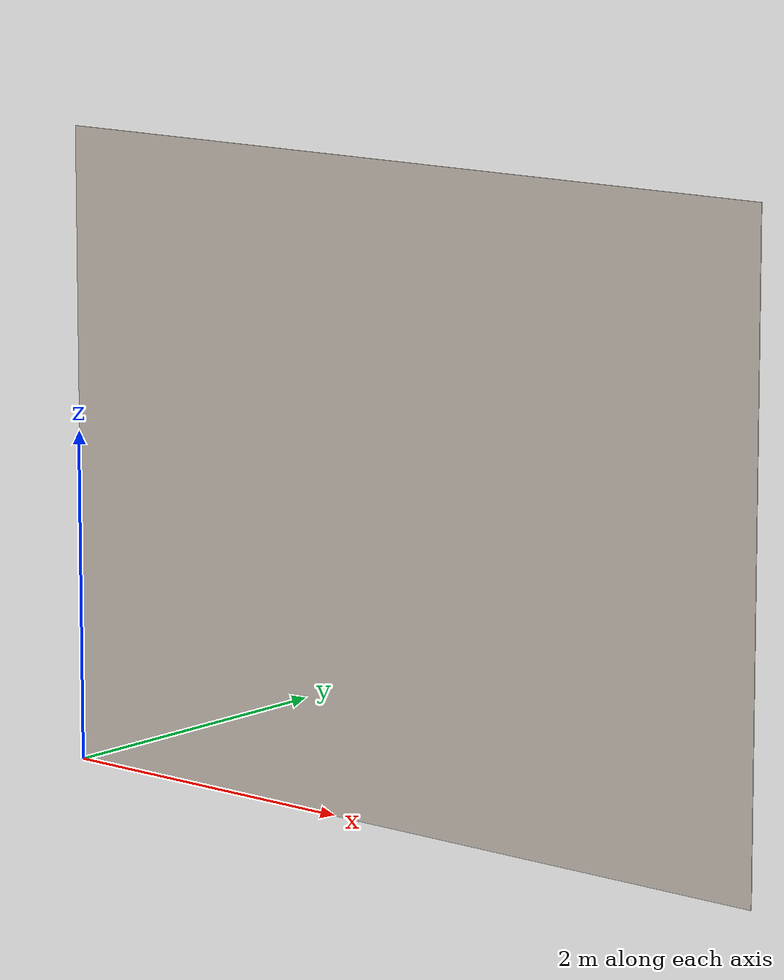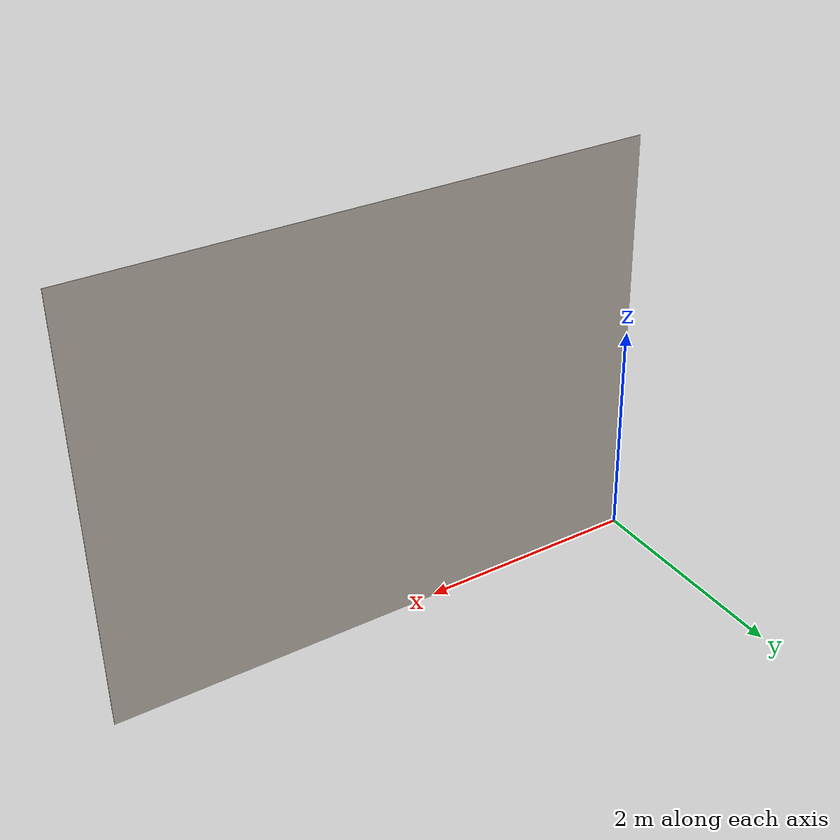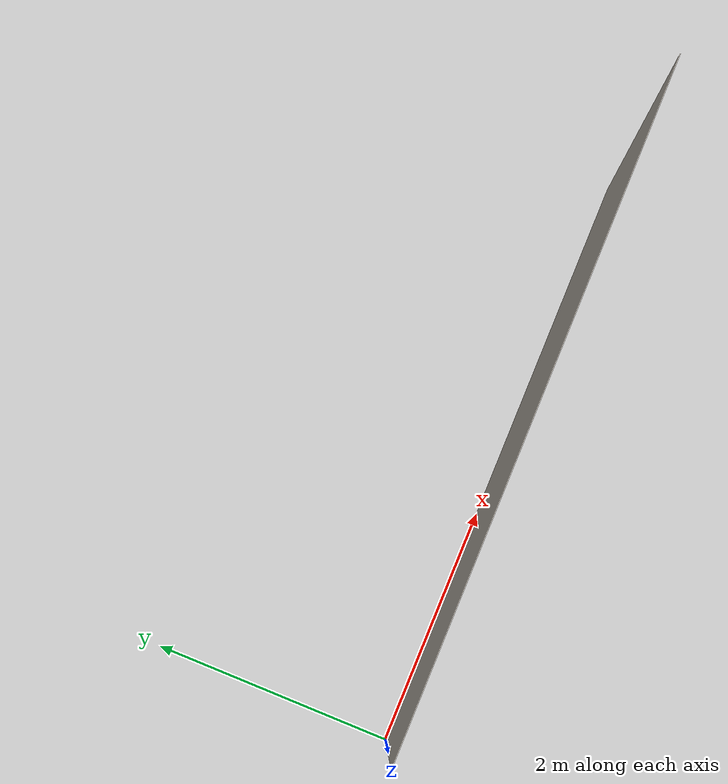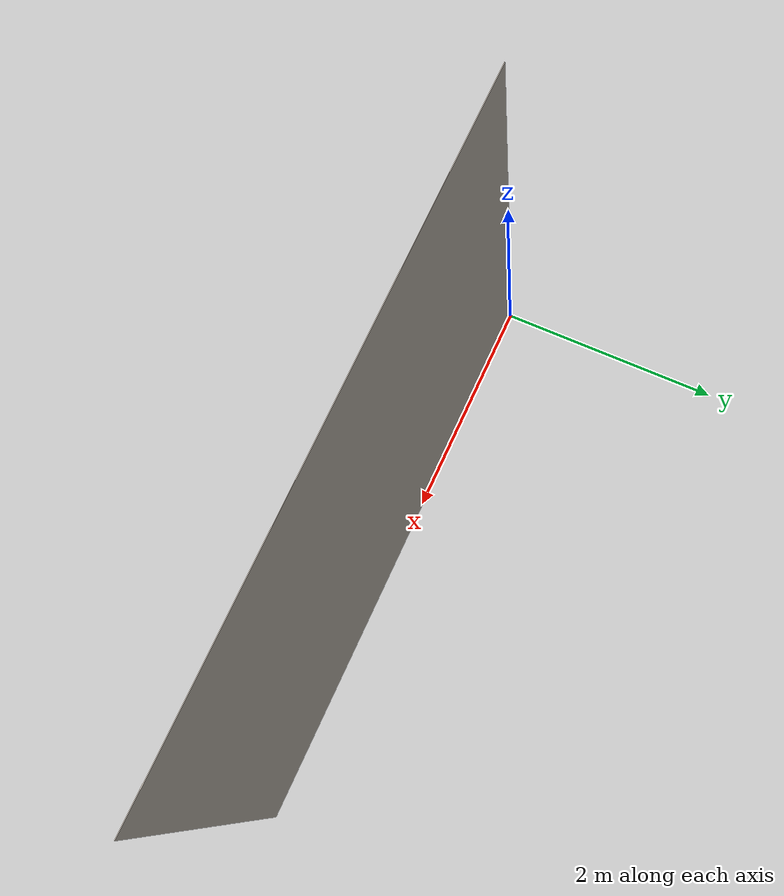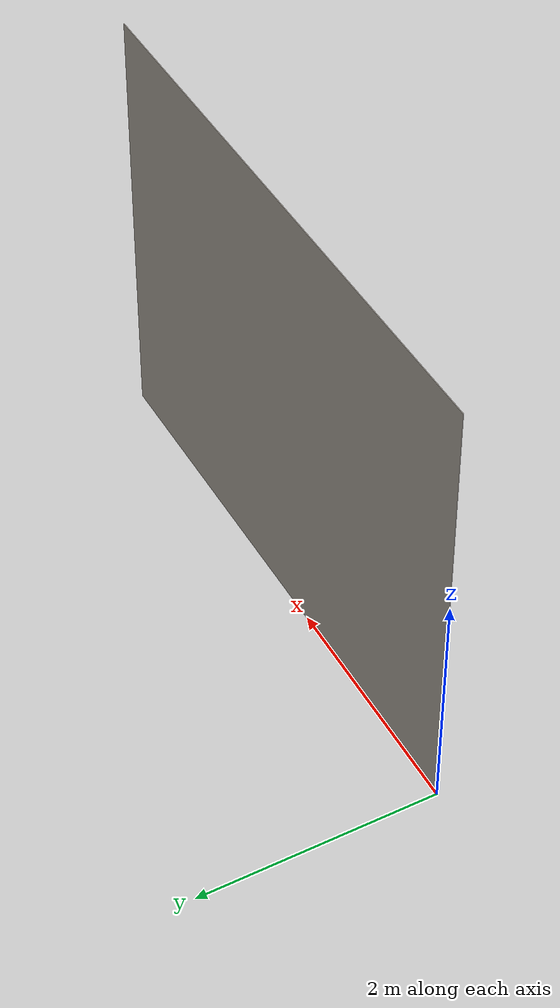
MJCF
<?xml version="1.0"?>
<mujoco model="kitchen-wall">
  <compiler autolimits="true" angle="radian"/>
  <default>
    <default class="default">
      <default class="visual">
        <geom contype="0" conaffinity="0" group="0"/>
      </default>
      <default class="structural">
        <geom contype="8" conaffinity="7" group="4" friction="0.90000000000000002 0.90000000000000002 0.001" solref="0.025000000000000001 1" solimp="0.998 0.998 0.001"/>
      </default>
    </default>
  </default>
  <asset>
    <material name="mat_kitchen_tile" class="default" texture="tex_kitchen_tile"/>
    <texture name="tex_kitchen_tile" type="2d" file="assets/kitchen_wall_3.png"/>
    <mesh name="mesh_wall" class="default" file="assets/kitchen_wall_3.obj" scale="-1 1 1"/>
  </asset>
  <worldbody>
    <body name="wall" quat="0 0 0.70710678118654746 0.70710678118654768">
      <geom name="wall_visual" class="visual" type="mesh" material="mat_kitchen_tile" mesh="mesh_wall"/>
      <geom name="wall_collider" class="structural" type="mesh" mesh="mesh_wall"/>
    </body>
  </worldbody>
</mujoco>
